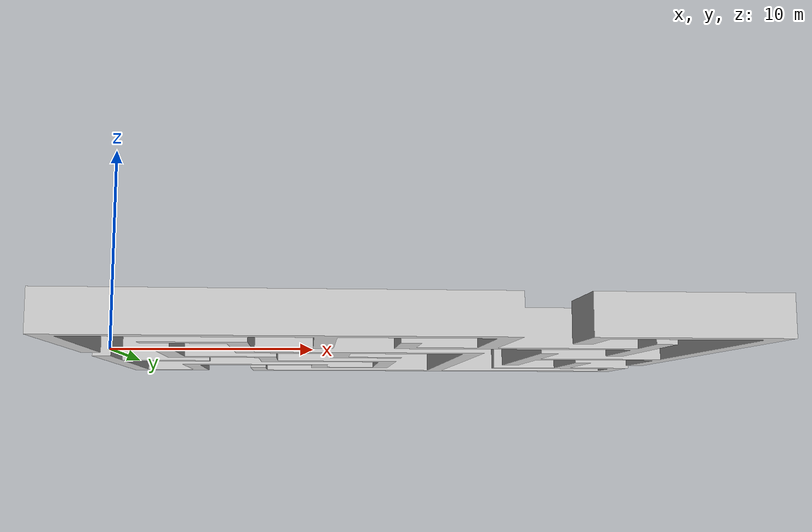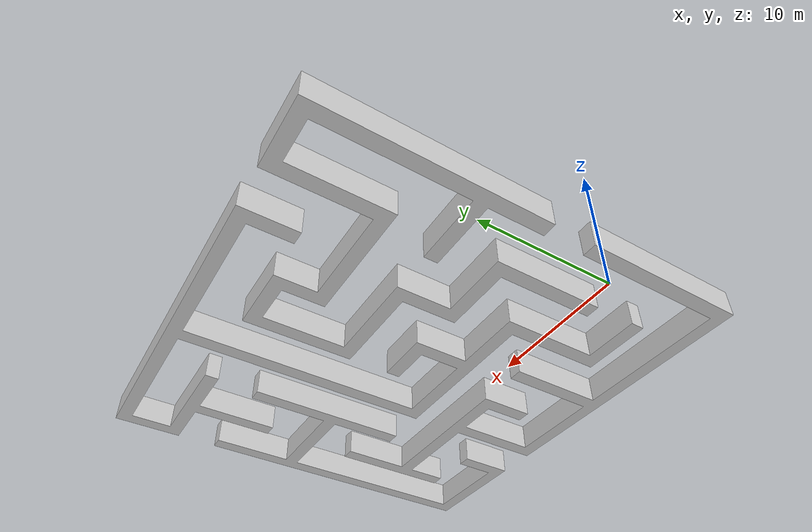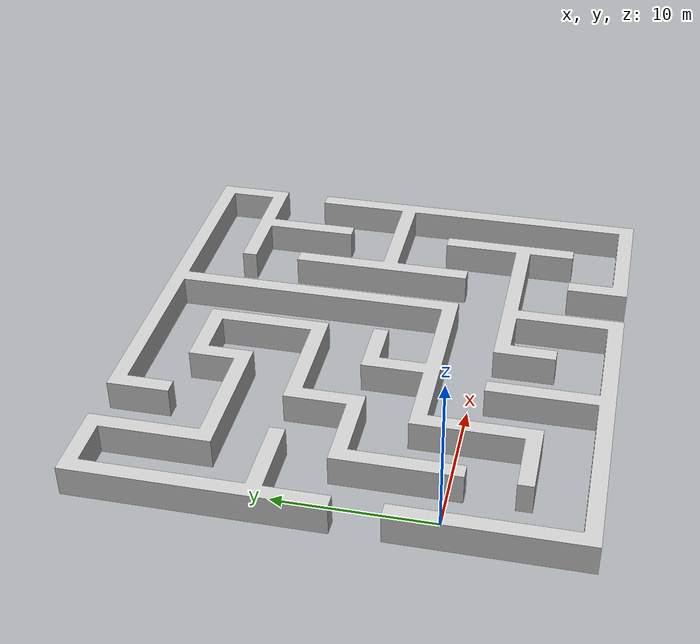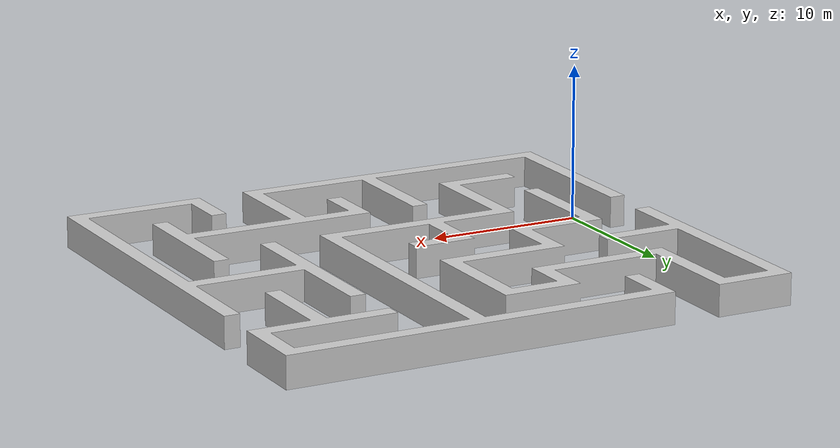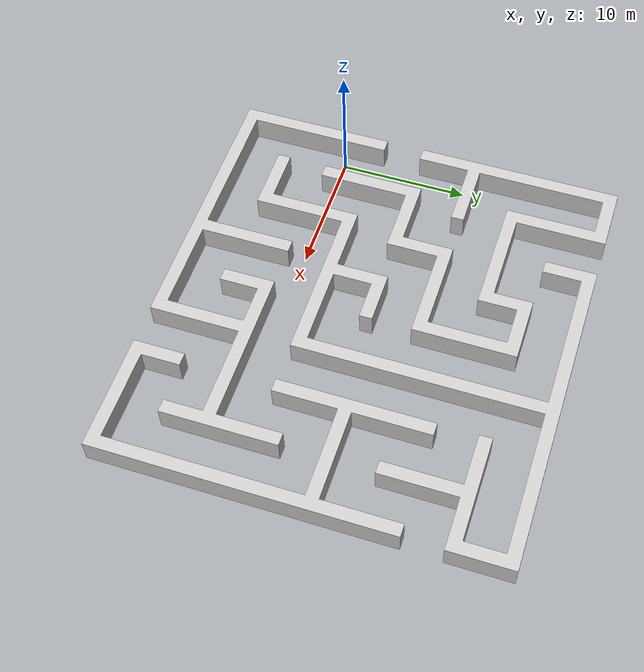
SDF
<?xml version="1.6"?>
<sdf version="1.6">
  <model name="maze">
    <static>true</static>
    <link name="walls_link">
      <visual name="walls_visual">
        <geometry>
          <mesh>
            <uri>model://maze/meshes/maze.dae</uri>
          </mesh>
        </geometry>
      </visual>
      <collision name="walls_collision">
        <geometry>
          <mesh>
            <uri>model://maze/meshes/maze.dae</uri>
          </mesh>
        </geometry>
      </collision>
    </link>
  </model>
</sdf>
